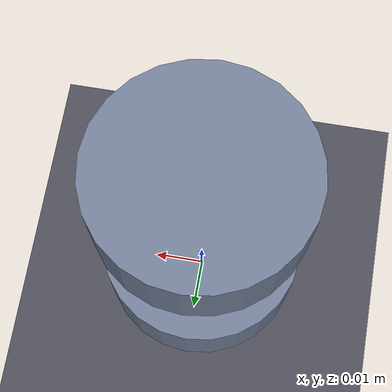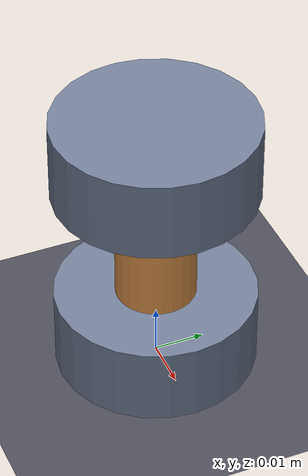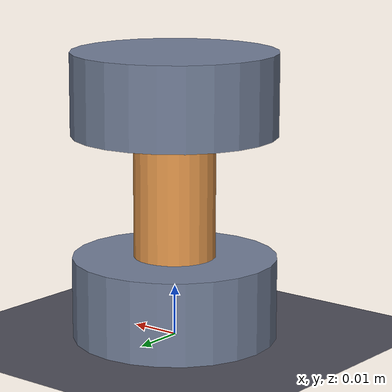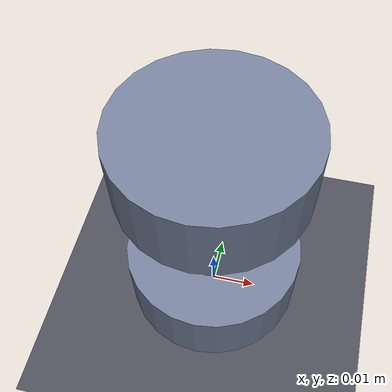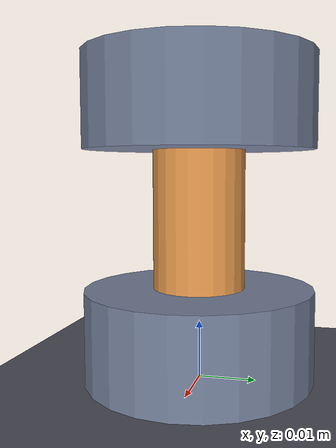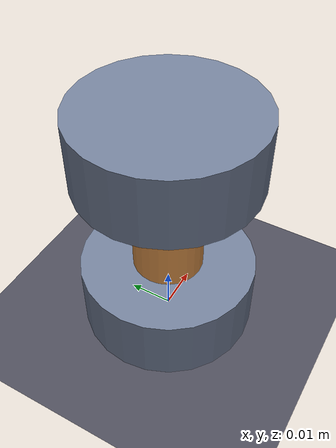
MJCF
<mujoco model="spanning_object">
  <option gravity="0 0 -9.81"/>
  <asset>
    <texture type="skybox" builtin="gradient" rgb1="0.3 0.5 0.7" rgb2="0 0 0" width="256" height="1536"/>
  </asset>
  <worldbody>
    <light pos="0 0 0.4" dir="0 0 -1" directional="true"/>
    <geom name="floor" type="plane" size="0.3 0.3 0.05" rgba="0.30 0.30 0.35 1"/>
    <body name="object" pos="0 0 0">
      <geom name="bottom" type="cylinder" size="0.020 0.008" pos="0 0 0.008" rgba="0.45 0.50 0.60 1"/>
      <geom name="neck"   type="cylinder" size="0.008 0.012" pos="0 0 0.028" rgba="0.90 0.60 0.30 1"/>
      <geom name="top"    type="cylinder" size="0.020 0.008" pos="0 0 0.048" rgba="0.45 0.50 0.60 1"/>
    </body>
  </worldbody>
</mujoco>
